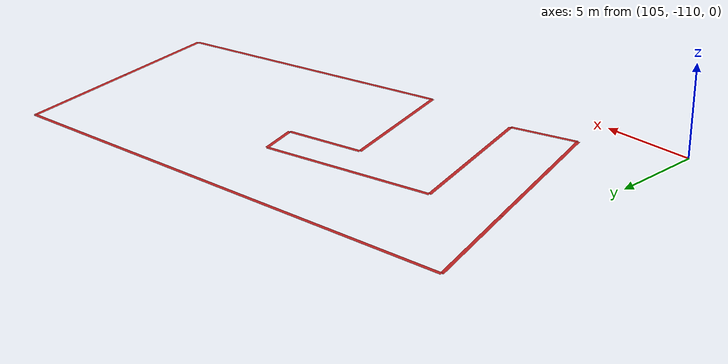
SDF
<sdf version="1.4">
 <world name="default">
  <include><uri>model://sun</uri></include>
  <model name="office_building_41054237">
   <static>true</static>
   <pose>117.727278355 -99.9926728766 0.0 0 0 0</pose>
   <link name="office_building_41054237_0">
    <collision name="office_building_41054237_0">
     <geometry><box><size>9.31926168183 0.2 0</size></box></geometry>
    </collision>
    <visual name="office_building_41054237_0">
     <geometry><box><size>9.31926168183 0.2 0</size></box></geometry>
     <material>
      <script><uri>file://media/materials/scripts/gazebo.material</uri><name>Gazebo/Red</name></script>
     </material>
    </visual>
    <pose>-9.1722389142 -3.20220151072 0 0 0 -1.25660225382</pose>
   </link>
   <link name="office_building_41054237_1">
    <collision name="office_building_41054237_1">
     <geometry><box><size>6.26860690232 0.2 0</size></box></geometry>
    </collision>
    <visual name="office_building_41054237_1">
     <geometry><box><size>6.26860690232 0.2 0</size></box></geometry>
     <material>
      <script><uri>file://media/materials/scripts/gazebo.material</uri><name>Gazebo/Red</name></script>
     </material>
    </visual>
    <pose>-11.5853069779 4.20876894702 0 0 0 -1.25514196017</pose>
   </link>
   <link name="office_building_41054237_2">
    <collision name="office_building_41054237_2">
     <geometry><box><size>26.3154968608 0.2 0</size></box></geometry>
    </collision>
    <visual name="office_building_41054237_2">
     <geometry><box><size>26.3154968608 0.2 0</size></box></geometry>
     <material>
      <script><uri>file://media/materials/scripts/gazebo.material</uri><name>Gazebo/Red</name></script>
     </material>
    </visual>
    <pose>0.523743489659 8.59749786064 0 0 0 -3.03428028777</pose>
   </link>
   <link name="office_building_41054237_3">
    <collision name="office_building_41054237_3">
     <geometry><box><size>6.79216403289 0.2 0</size></box></geometry>
    </collision>
    <visual name="office_building_41054237_3">
     <geometry><box><size>6.79216403289 0.2 0</size></box></geometry>
     <material>
      <script><uri>file://media/materials/scripts/gazebo.material</uri><name>Gazebo/Red</name></script>
     </material>
    </visual>
    <pose>14.2118730144 6.66521419784 0 0 0 1.75021909616</pose>
   </link>
   <link name="office_building_41054237_4">
    <collision name="office_building_41054237_4">
     <geometry><box><size>6.03456277368 0.2 0</size></box></geometry>
    </collision>
    <visual name="office_building_41054237_4">
     <geometry><box><size>6.03456277368 0.2 0</size></box></geometry>
     <material>
      <script><uri>file://media/materials/scripts/gazebo.material</uri><name>Gazebo/Red</name></script>
     </material>
    </visual>
    <pose>15.3572937949 0.354965353702 0 0 0 1.75051599966</pose>
   </link>
   <link name="office_building_41054237_5">
    <collision name="office_building_41054237_5">
     <geometry><box><size>15.3315578024 0.2 0</size></box></geometry>
    </collision>
    <visual name="office_building_41054237_5">
     <geometry><box><size>15.3315578024 0.2 0</size></box></geometry>
     <material>
      <script><uri>file://media/materials/scripts/gazebo.material</uri><name>Gazebo/Red</name></script>
     </material>
    </visual>
    <pose>8.4521793983 -4.4424099494 0 0 0 0.240875046433</pose>
   </link>
   <link name="office_building_41054237_6">
    <collision name="office_building_41054237_6">
     <geometry><box><size>7.57567945368 0.2 0</size></box></geometry>
    </collision>
    <visual name="office_building_41054237_6">
     <geometry><box><size>7.57567945368 0.2 0</size></box></geometry>
     <material>
      <script><uri>file://media/materials/scripts/gazebo.material</uri><name>Gazebo/Red</name></script>
     </material>
    </visual>
    <pose>-0.043146945561 -2.63194970124 0 0 0 -1.2896779427</pose>
   </link>
   <link name="office_building_41054237_7">
    <collision name="office_building_41054237_7">
     <geometry><box><size>4.24791827813 0.2 0</size></box></geometry>
    </collision>
    <visual name="office_building_41054237_7">
     <geometry><box><size>4.24791827813 0.2 0</size></box></geometry>
     <material>
      <script><uri>file://media/materials/scripts/gazebo.material</uri><name>Gazebo/Red</name></script>
     </material>
    </visual>
    <pose>0.979768495744 1.46616914154 0 0 0 -2.92378384548</pose>
   </link>
   <link name="office_building_41054237_8">
    <collision name="office_building_41054237_8">
     <geometry><box><size>2.20781224608 0.2 0</size></box></geometry>
    </collision>
    <visual name="office_building_41054237_8">
     <geometry><box><size>2.20781224608 0.2 0</size></box></geometry>
     <material>
      <script><uri>file://media/materials/scripts/gazebo.material</uri><name>Gazebo/Red</name></script>
     </material>
    </visual>
    <pose>2.71438198117 2.97564967083 0 0 0 -1.25850553985</pose>
   </link>
   <link name="office_building_41054237_9">
    <collision name="office_building_41054237_9">
     <geometry><box><size>9.39535968455 0.2 0</size></box></geometry>
    </collision>
    <visual name="office_building_41054237_9">
     <geometry><box><size>9.39535968455 0.2 0</size></box></geometry>
     <material>
      <script><uri>file://media/materials/scripts/gazebo.material</uri><name>Gazebo/Red</name></script>
     </material>
    </visual>
    <pose>-2.21155392262 3.01141375575 0 0 0 0.217726734292</pose>
   </link>
   <link name="office_building_41054237_10">
    <collision name="office_building_41054237_10">
     <geometry><box><size>8.92517929579 0.2 0</size></box></geometry>
    </collision>
    <visual name="office_building_41054237_10">
     <geometry><box><size>8.92517929579 0.2 0</size></box></geometry>
     <material>
      <script><uri>file://media/materials/scripts/gazebo.material</uri><name>Gazebo/Red</name></script>
     </material>
    </visual>
    <pose>-5.51394363335 -2.27709984163 0 0 0 1.86273673661</pose>
   </link>
   <link name="office_building_41054237_11">
    <collision name="office_building_41054237_11">
     <geometry><box><size>3.66618608163 0.2 0</size></box></geometry>
    </collision>
    <visual name="office_building_41054237_11">
     <geometry><box><size>3.66618608163 0.2 0</size></box></geometry>
     <material>
      <script><uri>file://media/materials/scripts/gazebo.material</uri><name>Gazebo/Red</name></script>
     </material>
    </visual>
    <pose>-5.98087023536 -7.09229426117 0 0 0 0.29983632845</pose>
   </link>
  </model>
 </world>
</sdf>
